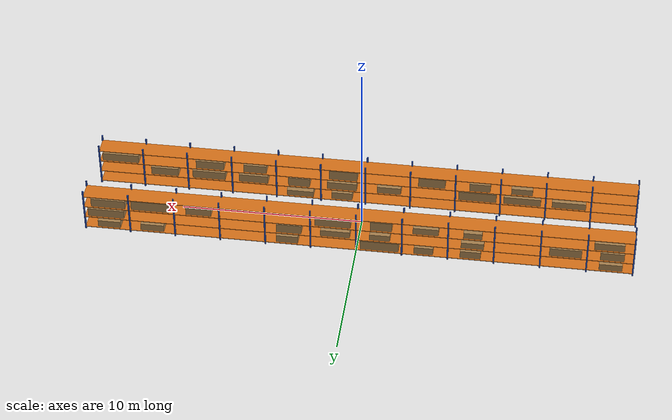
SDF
<sdf version="1.6">
 <world name="warehouse">
  <model name="shelf_row_1">
   <static>true</static>
   <link name="link">
    <visual name="up0_0_v">
     <pose>-15.0000 1.5400 1.3000 0 0 0.0000</pose>
     <geometry><box><size>0.0800 0.0800 2.6000</size></box></geometry>
     <material>
      <ambient>0.15 0.3 0.7 1</ambient>
      <diffuse>0.15 0.3 0.7 1</diffuse>
      <specular>0.1 0.1 0.1 1</specular>
     </material>
    </visual>
    <collision name="up0_0_c">
     <pose>-15.0000 1.5400 1.3000 0 0 0.0000</pose>
     <geometry><box><size>0.0800 0.0800 2.6000</size></box></geometry>
    </collision>
    <visual name="up0_2_v">
     <pose>-15.0000 2.4600 1.3000 0 0 0.0000</pose>
     <geometry><box><size>0.0800 0.0800 2.6000</size></box></geometry>
     <material>
      <ambient>0.15 0.3 0.7 1</ambient>
      <diffuse>0.15 0.3 0.7 1</diffuse>
      <specular>0.1 0.1 0.1 1</specular>
     </material>
    </visual>
    <collision name="up0_2_c">
     <pose>-15.0000 2.4600 1.3000 0 0 0.0000</pose>
     <geometry><box><size>0.0800 0.0800 2.6000</size></box></geometry>
    </collision>
    <visual name="up1_0_v">
     <pose>-12.5000 1.5400 1.3000 0 0 0.0000</pose>
     <geometry><box><size>0.0800 0.0800 2.6000</size></box></geometry>
     <material>
      <ambient>0.15 0.3 0.7 1</ambient>
      <diffuse>0.15 0.3 0.7 1</diffuse>
      <specular>0.1 0.1 0.1 1</specular>
     </material>
    </visual>
    <collision name="up1_0_c">
     <pose>-12.5000 1.5400 1.3000 0 0 0.0000</pose>
     <geometry><box><size>0.0800 0.0800 2.6000</size></box></geometry>
    </collision>
    <visual name="up1_2_v">
     <pose>-12.5000 2.4600 1.3000 0 0 0.0000</pose>
     <geometry><box><size>0.0800 0.0800 2.6000</size></box></geometry>
     <material>
      <ambient>0.15 0.3 0.7 1</ambient>
      <diffuse>0.15 0.3 0.7 1</diffuse>
      <specular>0.1 0.1 0.1 1</specular>
     </material>
    </visual>
    <collision name="up1_2_c">
     <pose>-12.5000 2.4600 1.3000 0 0 0.0000</pose>
     <geometry><box><size>0.0800 0.0800 2.6000</size></box></geometry>
    </collision>
    <visual name="up2_0_v">
     <pose>-10.0000 1.5400 1.3000 0 0 0.0000</pose>
     <geometry><box><size>0.0800 0.0800 2.6000</size></box></geometry>
     <material>
      <ambient>0.15 0.3 0.7 1</ambient>
      <diffuse>0.15 0.3 0.7 1</diffuse>
      <specular>0.1 0.1 0.1 1</specular>
     </material>
    </visual>
    <collision name="up2_0_c">
     <pose>-10.0000 1.5400 1.3000 0 0 0.0000</pose>
     <geometry><box><size>0.0800 0.0800 2.6000</size></box></geometry>
    </collision>
    <visual name="up2_2_v">
     <pose>-10.0000 2.4600 1.3000 0 0 0.0000</pose>
     <geometry><box><size>0.0800 0.0800 2.6000</size></box></geometry>
     <material>
      <ambient>0.15 0.3 0.7 1</ambient>
      <diffuse>0.15 0.3 0.7 1</diffuse>
      <specular>0.1 0.1 0.1 1</specular>
     </material>
    </visual>
    <collision name="up2_2_c">
     <pose>-10.0000 2.4600 1.3000 0 0 0.0000</pose>
     <geometry><box><size>0.0800 0.0800 2.6000</size></box></geometry>
    </collision>
    <visual name="up3_0_v">
     <pose>-7.5000 1.5400 1.3000 0 0 0.0000</pose>
     <geometry><box><size>0.0800 0.0800 2.6000</size></box></geometry>
     <material>
      <ambient>0.15 0.3 0.7 1</ambient>
      <diffuse>0.15 0.3 0.7 1</diffuse>
      <specular>0.1 0.1 0.1 1</specular>
     </material>
    </visual>
    <collision name="up3_0_c">
     <pose>-7.5000 1.5400 1.3000 0 0 0.0000</pose>
     <geometry><box><size>0.0800 0.0800 2.6000</size></box></geometry>
    </collision>
    <visual name="up3_2_v">
     <pose>-7.5000 2.4600 1.3000 0 0 0.0000</pose>
     <geometry><box><size>0.0800 0.0800 2.6000</size></box></geometry>
     <material>
      <ambient>0.15 0.3 0.7 1</ambient>
      <diffuse>0.15 0.3 0.7 1</diffuse>
      <specular>0.1 0.1 0.1 1</specular>
     </material>
    </visual>
    <collision name="up3_2_c">
     <pose>-7.5000 2.4600 1.3000 0 0 0.0000</pose>
     <geometry><box><size>0.0800 0.0800 2.6000</size></box></geometry>
    </collision>
    <visual name="up4_0_v">
     <pose>-5.0000 1.5400 1.3000 0 0 0.0000</pose>
     <geometry><box><size>0.0800 0.0800 2.6000</size></box></geometry>
     <material>
      <ambient>0.15 0.3 0.7 1</ambient>
      <diffuse>0.15 0.3 0.7 1</diffuse>
      <specular>0.1 0.1 0.1 1</specular>
     </material>
    </visual>
    <collision name="up4_0_c">
     <pose>-5.0000 1.5400 1.3000 0 0 0.0000</pose>
     <geometry><box><size>0.0800 0.0800 2.6000</size></box></geometry>
    </collision>
    <visual name="up4_2_v">
     <pose>-5.0000 2.4600 1.3000 0 0 0.0000</pose>
     <geometry><box><size>0.0800 0.0800 2.6000</size></box></geometry>
     <material>
      <ambient>0.15 0.3 0.7 1</ambient>
      <diffuse>0.15 0.3 0.7 1</diffuse>
      <specular>0.1 0.1 0.1 1</specular>
     </material>
    </visual>
    <collision name="up4_2_c">
     <pose>-5.0000 2.4600 1.3000 0 0 0.0000</pose>
     <geometry><box><size>0.0800 0.0800 2.6000</size></box></geometry>
    </collision>
    <visual name="up5_0_v">
     <pose>-2.5000 1.5400 1.3000 0 0 0.0000</pose>
     <geometry><box><size>0.0800 0.0800 2.6000</size></box></geometry>
     <material>
      <ambient>0.15 0.3 0.7 1</ambient>
      <diffuse>0.15 0.3 0.7 1</diffuse>
      <specular>0.1 0.1 0.1 1</specular>
     </material>
    </visual>
    <collision name="up5_0_c">
     <pose>-2.5000 1.5400 1.3000 0 0 0.0000</pose>
     <geometry><box><size>0.0800 0.0800 2.6000</size></box></geometry>
    </collision>
    <visual name="up5_2_v">
     <pose>-2.5000 2.4600 1.3000 0 0 0.0000</pose>
     <geometry><box><size>0.0800 0.0800 2.6000</size></box></geometry>
     <material>
      <ambient>0.15 0.3 0.7 1</ambient>
      <diffuse>0.15 0.3 0.7 1</diffuse>
      <specular>0.1 0.1 0.1 1</specular>
     </material>
    </visual>
    <collision name="up5_2_c">
     <pose>-2.5000 2.4600 1.3000 0 0 0.0000</pose>
     <geometry><box><size>0.0800 0.0800 2.6000</size></box></geometry>
    </collision>
    <visual name="up6_0_v">
     <pose>0.0000 1.5400 1.3000 0 0 0.0000</pose>
     <geometry><box><size>0.0800 0.0800 2.6000</size></box></geometry>
     <material>
      <ambient>0.15 0.3 0.7 1</ambient>
      <diffuse>0.15 0.3 0.7 1</diffuse>
      <specular>0.1 0.1 0.1 1</specular>
     </material>
    </visual>
    <collision name="up6_0_c">
     <pose>0.0000 1.5400 1.3000 0 0 0.0000</pose>
     <geometry><box><size>0.0800 0.0800 2.6000</size></box></geometry>
    </collision>
    <visual name="up6_2_v">
     <pose>0.0000 2.4600 1.3000 0 0 0.0000</pose>
     <geometry><box><size>0.0800 0.0800 2.6000</size></box></geometry>
     <material>
      <ambient>0.15 0.3 0.7 1</ambient>
      <diffuse>0.15 0.3 0.7 1</diffuse>
      <specular>0.1 0.1 0.1 1</specular>
     </material>
    </visual>
    <collision name="up6_2_c">
     <pose>0.0000 2.4600 1.3000 0 0 0.0000</pose>
     <geometry><box><size>0.0800 0.0800 2.6000</size></box></geometry>
    </collision>
    <visual name="up7_0_v">
     <pose>2.5000 1.5400 1.3000 0 0 0.0000</pose>
     <geometry><box><size>0.0800 0.0800 2.6000</size></box></geometry>
     <material>
      <ambient>0.15 0.3 0.7 1</ambient>
      <diffuse>0.15 0.3 0.7 1</diffuse>
      <specular>0.1 0.1 0.1 1</specular>
     </material>
    </visual>
    <collision name="up7_0_c">
     <pose>2.5000 1.5400 1.3000 0 0 0.0000</pose>
     <geometry><box><size>0.0800 0.0800 2.6000</size></box></geometry>
    </collision>
    <visual name="up7_2_v">
     <pose>2.5000 2.4600 1.3000 0 0 0.0000</pose>
     <geometry><box><size>0.0800 0.0800 2.6000</size></box></geometry>
     <material>
      <ambient>0.15 0.3 0.7 1</ambient>
      <diffuse>0.15 0.3 0.7 1</diffuse>
      <specular>0.1 0.1 0.1 1</specular>
     </material>
    </visual>
    <collision name="up7_2_c">
     <pose>2.5000 2.4600 1.3000 0 0 0.0000</pose>
     <geometry><box><size>0.0800 0.0800 2.6000</size></box></geometry>
    </collision>
    <visual name="up8_0_v">
     <pose>5.0000 1.5400 1.3000 0 0 0.0000</pose>
     <geometry><box><size>0.0800 0.0800 2.6000</size></box></geometry>
     <material>
      <ambient>0.15 0.3 0.7 1</ambient>
      <diffuse>0.15 0.3 0.7 1</diffuse>
      <specular>0.1 0.1 0.1 1</specular>
     </material>
    </visual>
    <collision name="up8_0_c">
     <pose>5.0000 1.5400 1.3000 0 0 0.0000</pose>
     <geometry><box><size>0.0800 0.0800 2.6000</size></box></geometry>
    </collision>
    <visual name="up8_2_v">
     <pose>5.0000 2.4600 1.3000 0 0 0.0000</pose>
     <geometry><box><size>0.0800 0.0800 2.6000</size></box></geometry>
     <material>
      <ambient>0.15 0.3 0.7 1</ambient>
      <diffuse>0.15 0.3 0.7 1</diffuse>
      <specular>0.1 0.1 0.1 1</specular>
     </material>
    </visual>
    <collision name="up8_2_c">
     <pose>5.0000 2.4600 1.3000 0 0 0.0000</pose>
     <geometry><box><size>0.0800 0.0800 2.6000</size></box></geometry>
    </collision>
    <visual name="up9_0_v">
     <pose>7.5000 1.5400 1.3000 0 0 0.0000</pose>
     <geometry><box><size>0.0800 0.0800 2.6000</size></box></geometry>
     <material>
      <ambient>0.15 0.3 0.7 1</ambient>
      <diffuse>0.15 0.3 0.7 1</diffuse>
      <specular>0.1 0.1 0.1 1</specular>
     </material>
    </visual>
    <collision name="up9_0_c">
     <pose>7.5000 1.5400 1.3000 0 0 0.0000</pose>
     <geometry><box><size>0.0800 0.0800 2.6000</size></box></geometry>
    </collision>
    <visual name="up9_2_v">
     <pose>7.5000 2.4600 1.3000 0 0 0.0000</pose>
     <geometry><box><size>0.0800 0.0800 2.6000</size></box></geometry>
     <material>
      <ambient>0.15 0.3 0.7 1</ambient>
      <diffuse>0.15 0.3 0.7 1</diffuse>
      <specular>0.1 0.1 0.1 1</specular>
     </material>
    </visual>
    <collision name="up9_2_c">
     <pose>7.5000 2.4600 1.3000 0 0 0.0000</pose>
     <geometry><box><size>0.0800 0.0800 2.6000</size></box></geometry>
    </collision>
    <visual name="up10_0_v">
     <pose>10.0000 1.5400 1.3000 0 0 0.0000</pose>
     <geometry><box><size>0.0800 0.0800 2.6000</size></box></geometry>
     <material>
      <ambient>0.15 0.3 0.7 1</ambient>
      <diffuse>0.15 0.3 0.7 1</diffuse>
      <specular>0.1 0.1 0.1 1</specular>
     </material>
    </visual>
    <collision name="up10_0_c">
     <pose>10.0000 1.5400 1.3000 0 0 0.0000</pose>
     <geometry><box><size>0.0800 0.0800 2.6000</size></box></geometry>
    </collision>
    <visual name="up10_2_v">
     <pose>10.0000 2.4600 1.3000 0 0 0.0000</pose>
     <geometry><box><size>0.0800 0.0800 2.6000</size></box></geometry>
     <material>
      <ambient>0.15 0.3 0.7 1</ambient>
      <diffuse>0.15 0.3 0.7 1</diffuse>
      <specular>0.1 0.1 0.1 1</specular>
     </material>
    </visual>
    <collision name="up10_2_c">
     <pose>10.0000 2.4600 1.3000 0 0 0.0000</pose>
     <geometry><box><size>0.0800 0.0800 2.6000</size></box></geometry>
    </collision>
    <visual name="up11_0_v">
     <pose>12.5000 1.5400 1.3000 0 0 0.0000</pose>
     <geometry><box><size>0.0800 0.0800 2.6000</size></box></geometry>
     <material>
      <ambient>0.15 0.3 0.7 1</ambient>
      <diffuse>0.15 0.3 0.7 1</diffuse>
      <specular>0.1 0.1 0.1 1</specular>
     </material>
    </visual>
    <collision name="up11_0_c">
     <pose>12.5000 1.5400 1.3000 0 0 0.0000</pose>
     <geometry><box><size>0.0800 0.0800 2.6000</size></box></geometry>
    </collision>
    <visual name="up11_2_v">
     <pose>12.5000 2.4600 1.3000 0 0 0.0000</pose>
     <geometry><box><size>0.0800 0.0800 2.6000</size></box></geometry>
     <material>
      <ambient>0.15 0.3 0.7 1</ambient>
      <diffuse>0.15 0.3 0.7 1</diffuse>
      <specular>0.1 0.1 0.1 1</specular>
     </material>
    </visual>
    <collision name="up11_2_c">
     <pose>12.5000 2.4600 1.3000 0 0 0.0000</pose>
     <geometry><box><size>0.0800 0.0800 2.6000</size></box></geometry>
    </collision>
    <visual name="up12_0_v">
     <pose>15.0000 1.5400 1.3000 0 0 0.0000</pose>
     <geometry><box><size>0.0800 0.0800 2.6000</size></box></geometry>
     <material>
      <ambient>0.15 0.3 0.7 1</ambient>
      <diffuse>0.15 0.3 0.7 1</diffuse>
      <specular>0.1 0.1 0.1 1</specular>
     </material>
    </visual>
    <collision name="up12_0_c">
     <pose>15.0000 1.5400 1.3000 0 0 0.0000</pose>
     <geometry><box><size>0.0800 0.0800 2.6000</size></box></geometry>
    </collision>
    <visual name="up12_2_v">
     <pose>15.0000 2.4600 1.3000 0 0 0.0000</pose>
     <geometry><box><size>0.0800 0.0800 2.6000</size></box></geometry>
     <material>
      <ambient>0.15 0.3 0.7 1</ambient>
      <diffuse>0.15 0.3 0.7 1</diffuse>
      <specular>0.1 0.1 0.1 1</specular>
     </material>
    </visual>
    <collision name="up12_2_c">
     <pose>15.0000 2.4600 1.3000 0 0 0.0000</pose>
     <geometry><box><size>0.0800 0.0800 2.6000</size></box></geometry>
    </collision>
    <visual name="beam0_v">
     <pose>0.0000 2.0000 0.1500 0 0 0.0000</pose>
     <geometry><box><size>30.0000 1.0000 0.0400</size></box></geometry>
     <material>
      <ambient>0.85 0.45 0.1 1</ambient>
      <diffuse>0.85 0.45 0.1 1</diffuse>
      <specular>0.1 0.1 0.1 1</specular>
     </material>
    </visual>
    <collision name="beam0_c">
     <pose>0.0000 2.0000 0.1500 0 0 0.0000</pose>
     <geometry><box><size>30.0000 1.0000 0.0400</size></box></geometry>
    </collision>
    <visual name="beam1_v">
     <pose>0.0000 2.0000 0.8500 0 0 0.0000</pose>
     <geometry><box><size>30.0000 1.0000 0.0400</size></box></geometry>
     <material>
      <ambient>0.85 0.45 0.1 1</ambient>
      <diffuse>0.85 0.45 0.1 1</diffuse>
      <specular>0.1 0.1 0.1 1</specular>
     </material>
    </visual>
    <collision name="beam1_c">
     <pose>0.0000 2.0000 0.8500 0 0 0.0000</pose>
     <geometry><box><size>30.0000 1.0000 0.0400</size></box></geometry>
    </collision>
    <visual name="beam2_v">
     <pose>0.0000 2.0000 1.5500 0 0 0.0000</pose>
     <geometry><box><size>30.0000 1.0000 0.0400</size></box></geometry>
     <material>
      <ambient>0.85 0.45 0.1 1</ambient>
      <diffuse>0.85 0.45 0.1 1</diffuse>
      <specular>0.1 0.1 0.1 1</specular>
     </material>
    </visual>
    <collision name="beam2_c">
     <pose>0.0000 2.0000 1.5500 0 0 0.0000</pose>
     <geometry><box><size>30.0000 1.0000 0.0400</size></box></geometry>
    </collision>
    <visual name="beam3_v">
     <pose>0.0000 2.0000 2.2500 0 0 0.0000</pose>
     <geometry><box><size>30.0000 1.0000 0.0400</size></box></geometry>
     <material>
      <ambient>0.85 0.45 0.1 1</ambient>
      <diffuse>0.85 0.45 0.1 1</diffuse>
      <specular>0.1 0.1 0.1 1</specular>
     </material>
    </visual>
    <collision name="beam3_c">
     <pose>0.0000 2.0000 2.2500 0 0 0.0000</pose>
     <geometry><box><size>30.0000 1.0000 0.0400</size></box></geometry>
    </collision>
    <visual name="pal0_0_v">
     <pose>-13.8033 2.0000 0.3670 0 0 0.0000</pose>
     <geometry><box><size>1.2552 0.8500 0.3941</size></box></geometry>
     <material>
      <ambient>0.65 0.5 0.3 1</ambient>
      <diffuse>0.65 0.5 0.3 1</diffuse>
      <specular>0.1 0.1 0.1 1</specular>
     </material>
    </visual>
    <collision name="pal0_0_c">
     <pose>-13.8033 2.0000 0.3670 0 0 0.0000</pose>
     <geometry><box><size>1.2552 0.8500 0.3941</size></box></geometry>
    </collision>
    <visual name="pal0_1_v">
     <pose>-13.8492 2.0000 1.1186 0 0 0.0000</pose>
     <geometry><box><size>1.2890 0.8500 0.4973</size></box></geometry>
     <material>
      <ambient>0.65 0.5 0.3 1</ambient>
      <diffuse>0.65 0.5 0.3 1</diffuse>
      <specular>0.1 0.1 0.1 1</specular>
     </material>
    </visual>
    <collision name="pal0_1_c">
     <pose>-13.8492 2.0000 1.1186 0 0 0.0000</pose>
     <geometry><box><size>1.2890 0.8500 0.4973</size></box></geometry>
    </collision>
    <visual name="pal0_2_v">
     <pose>-13.6594 2.0000 1.7912 0 0 0.0000</pose>
     <geometry><box><size>1.6230 0.8500 0.4423</size></box></geometry>
     <material>
      <ambient>0.65 0.5 0.3 1</ambient>
      <diffuse>0.65 0.5 0.3 1</diffuse>
      <specular>0.1 0.1 0.1 1</specular>
     </material>
    </visual>
    <collision name="pal0_2_c">
     <pose>-13.6594 2.0000 1.7912 0 0 0.0000</pose>
     <geometry><box><size>1.6230 0.8500 0.4423</size></box></geometry>
    </collision>
    <visual name="pal1_1_v">
     <pose>-11.3392 2.0000 1.1222 0 0 0.0000</pose>
     <geometry><box><size>1.7438 0.8500 0.5044</size></box></geometry>
     <material>
      <ambient>0.65 0.5 0.3 1</ambient>
      <diffuse>0.65 0.5 0.3 1</diffuse>
      <specular>0.1 0.1 0.1 1</specular>
     </material>
    </visual>
    <collision name="pal1_1_c">
     <pose>-11.3392 2.0000 1.1222 0 0 0.0000</pose>
     <geometry><box><size>1.7438 0.8500 0.5044</size></box></geometry>
    </collision>
    <visual name="pal3_0_v">
     <pose>-6.2231 2.0000 0.3949 0 0 0.0000</pose>
     <geometry><box><size>1.1139 0.8500 0.4497</size></box></geometry>
     <material>
      <ambient>0.65 0.5 0.3 1</ambient>
      <diffuse>0.65 0.5 0.3 1</diffuse>
      <specular>0.1 0.1 0.1 1</specular>
     </material>
    </visual>
    <collision name="pal3_0_c">
     <pose>-6.2231 2.0000 0.3949 0 0 0.0000</pose>
     <geometry><box><size>1.1139 0.8500 0.4497</size></box></geometry>
    </collision>
    <visual name="pal3_1_v">
     <pose>-6.3175 2.0000 1.0534 0 0 0.0000</pose>
     <geometry><box><size>1.2296 0.8500 0.3668</size></box></geometry>
     <material>
      <ambient>0.65 0.5 0.3 1</ambient>
      <diffuse>0.65 0.5 0.3 1</diffuse>
      <specular>0.1 0.1 0.1 1</specular>
     </material>
    </visual>
    <collision name="pal3_1_c">
     <pose>-6.3175 2.0000 1.0534 0 0 0.0000</pose>
     <geometry><box><size>1.2296 0.8500 0.3668</size></box></geometry>
    </collision>
    <visual name="pal3_2_v">
     <pose>-6.3197 2.0000 1.7516 0 0 0.0000</pose>
     <geometry><box><size>1.0003 0.8500 0.3631</size></box></geometry>
     <material>
      <ambient>0.65 0.5 0.3 1</ambient>
      <diffuse>0.65 0.5 0.3 1</diffuse>
      <specular>0.1 0.1 0.1 1</specular>
     </material>
    </visual>
    <collision name="pal3_2_c">
     <pose>-6.3197 2.0000 1.7516 0 0 0.0000</pose>
     <geometry><box><size>1.0003 0.8500 0.3631</size></box></geometry>
    </collision>
    <visual name="pal4_0_v">
     <pose>-3.6751 2.0000 0.3905 0 0 0.0000</pose>
     <geometry><box><size>1.0281 0.8500 0.4409</size></box></geometry>
     <material>
      <ambient>0.65 0.5 0.3 1</ambient>
      <diffuse>0.65 0.5 0.3 1</diffuse>
      <specular>0.1 0.1 0.1 1</specular>
     </material>
    </visual>
    <collision name="pal4_0_c">
     <pose>-3.6751 2.0000 0.3905 0 0 0.0000</pose>
     <geometry><box><size>1.0281 0.8500 0.4409</size></box></geometry>
    </collision>
    <visual name="pal4_2_v">
     <pose>-3.7772 2.0000 1.7765 0 0 0.0000</pose>
     <geometry><box><size>1.3821 0.8500 0.4131</size></box></geometry>
     <material>
      <ambient>0.65 0.5 0.3 1</ambient>
      <diffuse>0.65 0.5 0.3 1</diffuse>
      <specular>0.1 0.1 0.1 1</specular>
     </material>
    </visual>
    <collision name="pal4_2_c">
     <pose>-3.7772 2.0000 1.7765 0 0 0.0000</pose>
     <geometry><box><size>1.3821 0.8500 0.4131</size></box></geometry>
    </collision>
    <visual name="pal5_0_v">
     <pose>-1.2568 2.0000 0.4511 0 0 0.0000</pose>
     <geometry><box><size>2.0924 0.8500 0.5622</size></box></geometry>
     <material>
      <ambient>0.65 0.5 0.3 1</ambient>
      <diffuse>0.65 0.5 0.3 1</diffuse>
      <specular>0.1 0.1 0.1 1</specular>
     </material>
    </visual>
    <collision name="pal5_0_c">
     <pose>-1.2568 2.0000 0.4511 0 0 0.0000</pose>
     <geometry><box><size>2.0924 0.8500 0.5622</size></box></geometry>
    </collision>
    <visual name="pal5_1_v">
     <pose>-1.2815 2.0000 1.0557 0 0 0.0000</pose>
     <geometry><box><size>1.1124 0.8500 0.3715</size></box></geometry>
     <material>
      <ambient>0.65 0.5 0.3 1</ambient>
      <diffuse>0.65 0.5 0.3 1</diffuse>
      <specular>0.1 0.1 0.1 1</specular>
     </material>
    </visual>
    <collision name="pal5_1_c">
     <pose>-1.2815 2.0000 1.0557 0 0 0.0000</pose>
     <geometry><box><size>1.1124 0.8500 0.3715</size></box></geometry>
    </collision>
    <visual name="pal5_2_v">
     <pose>-1.3454 2.0000 1.8486 0 0 0.0000</pose>
     <geometry><box><size>1.1776 0.8500 0.5572</size></box></geometry>
     <material>
      <ambient>0.65 0.5 0.3 1</ambient>
      <diffuse>0.65 0.5 0.3 1</diffuse>
      <specular>0.1 0.1 0.1 1</specular>
     </material>
    </visual>
    <collision name="pal5_2_c">
     <pose>-1.3454 2.0000 1.8486 0 0 0.0000</pose>
     <geometry><box><size>1.1776 0.8500 0.5572</size></box></geometry>
    </collision>
    <visual name="pal6_1_v">
     <pose>1.1554 2.0000 1.0633 0 0 0.0000</pose>
     <geometry><box><size>1.5975 0.8500 0.3867</size></box></geometry>
     <material>
      <ambient>0.65 0.5 0.3 1</ambient>
      <diffuse>0.65 0.5 0.3 1</diffuse>
      <specular>0.1 0.1 0.1 1</specular>
     </material>
    </visual>
    <collision name="pal6_1_c">
     <pose>1.1554 2.0000 1.0633 0 0 0.0000</pose>
     <geometry><box><size>1.5975 0.8500 0.3867</size></box></geometry>
    </collision>
    <visual name="pal6_2_v">
     <pose>1.2892 2.0000 1.8673 0 0 0.0000</pose>
     <geometry><box><size>1.9497 0.8500 0.5946</size></box></geometry>
     <material>
      <ambient>0.65 0.5 0.3 1</ambient>
      <diffuse>0.65 0.5 0.3 1</diffuse>
      <specular>0.1 0.1 0.1 1</specular>
     </material>
    </visual>
    <collision name="pal6_2_c">
     <pose>1.2892 2.0000 1.8673 0 0 0.0000</pose>
     <geometry><box><size>1.9497 0.8500 0.5946</size></box></geometry>
    </collision>
    <visual name="pal7_0_v">
     <pose>3.8044 2.0000 0.3908 0 0 0.0000</pose>
     <geometry><box><size>1.1837 0.8500 0.4417</size></box></geometry>
     <material>
      <ambient>0.65 0.5 0.3 1</ambient>
      <diffuse>0.65 0.5 0.3 1</diffuse>
      <specular>0.1 0.1 0.1 1</specular>
     </material>
    </visual>
    <collision name="pal7_0_c">
     <pose>3.8044 2.0000 0.3908 0 0 0.0000</pose>
     <geometry><box><size>1.1837 0.8500 0.4417</size></box></geometry>
    </collision>
    <visual name="pal7_1_v">
     <pose>3.6946 2.0000 1.1424 0 0 0.0000</pose>
     <geometry><box><size>1.3626 0.8500 0.5448</size></box></geometry>
     <material>
      <ambient>0.65 0.5 0.3 1</ambient>
      <diffuse>0.65 0.5 0.3 1</diffuse>
      <specular>0.1 0.1 0.1 1</specular>
     </material>
    </visual>
    <collision name="pal7_1_c">
     <pose>3.6946 2.0000 1.1424 0 0 0.0000</pose>
     <geometry><box><size>1.3626 0.8500 0.5448</size></box></geometry>
    </collision>
    <visual name="pal9_2_v">
     <pose>8.6558 2.0000 1.8097 0 0 0.0000</pose>
     <geometry><box><size>1.3911 0.8500 0.4794</size></box></geometry>
     <material>
      <ambient>0.65 0.5 0.3 1</ambient>
      <diffuse>0.65 0.5 0.3 1</diffuse>
      <specular>0.1 0.1 0.1 1</specular>
     </material>
    </visual>
    <collision name="pal9_2_c">
     <pose>8.6558 2.0000 1.8097 0 0 0.0000</pose>
     <geometry><box><size>1.3911 0.8500 0.4794</size></box></geometry>
    </collision>
    <visual name="pal10_0_v">
     <pose>11.2885 2.0000 0.3799 0 0 0.0000</pose>
     <geometry><box><size>1.2851 0.8500 0.4199</size></box></geometry>
     <material>
      <ambient>0.65 0.5 0.3 1</ambient>
      <diffuse>0.65 0.5 0.3 1</diffuse>
      <specular>0.1 0.1 0.1 1</specular>
     </material>
    </visual>
    <collision name="pal10_0_c">
     <pose>11.2885 2.0000 0.3799 0 0 0.0000</pose>
     <geometry><box><size>1.2851 0.8500 0.4199</size></box></geometry>
    </collision>
    <visual name="pal10_2_v">
     <pose>11.3410 2.0000 1.8621 0 0 0.0000</pose>
     <geometry><box><size>2.0868 0.8500 0.5843</size></box></geometry>
     <material>
      <ambient>0.65 0.5 0.3 1</ambient>
      <diffuse>0.65 0.5 0.3 1</diffuse>
      <specular>0.1 0.1 0.1 1</specular>
     </material>
    </visual>
    <collision name="pal10_2_c">
     <pose>11.3410 2.0000 1.8621 0 0 0.0000</pose>
     <geometry><box><size>2.0868 0.8500 0.5843</size></box></geometry>
    </collision>
    <visual name="pal11_0_v">
     <pose>13.6893 2.0000 0.3726 0 0 0.0000</pose>
     <geometry><box><size>1.2495 0.8500 0.4051</size></box></geometry>
     <material>
      <ambient>0.65 0.5 0.3 1</ambient>
      <diffuse>0.65 0.5 0.3 1</diffuse>
      <specular>0.1 0.1 0.1 1</specular>
     </material>
    </visual>
    <collision name="pal11_0_c">
     <pose>13.6893 2.0000 0.3726 0 0 0.0000</pose>
     <geometry><box><size>1.2495 0.8500 0.4051</size></box></geometry>
    </collision>
    <visual name="pal11_1_v">
     <pose>13.8181 2.0000 1.1230 0 0 0.0000</pose>
     <geometry><box><size>1.9903 0.8500 0.5060</size></box></geometry>
     <material>
      <ambient>0.65 0.5 0.3 1</ambient>
      <diffuse>0.65 0.5 0.3 1</diffuse>
      <specular>0.1 0.1 0.1 1</specular>
     </material>
    </visual>
    <collision name="pal11_1_c">
     <pose>13.8181 2.0000 1.1230 0 0 0.0000</pose>
     <geometry><box><size>1.9903 0.8500 0.5060</size></box></geometry>
    </collision>
    <visual name="pal11_2_v">
     <pose>13.6670 2.0000 1.8266 0 0 0.0000</pose>
     <geometry><box><size>1.8796 0.8500 0.5132</size></box></geometry>
     <material>
      <ambient>0.65 0.5 0.3 1</ambient>
      <diffuse>0.65 0.5 0.3 1</diffuse>
      <specular>0.1 0.1 0.1 1</specular>
     </material>
    </visual>
    <collision name="pal11_2_c">
     <pose>13.6670 2.0000 1.8266 0 0 0.0000</pose>
     <geometry><box><size>1.8796 0.8500 0.5132</size></box></geometry>
    </collision>
   </link>
  </model>
  <model name="shelf_row_2">
   <static>true</static>
   <link name="link">
    <visual name="up0_0_v">
     <pose>-15.0000 -2.4600 1.3000 0 0 0.0000</pose>
     <geometry><box><size>0.0800 0.0800 2.6000</size></box></geometry>
     <material>
      <ambient>0.15 0.3 0.7 1</ambient>
      <diffuse>0.15 0.3 0.7 1</diffuse>
      <specular>0.1 0.1 0.1 1</specular>
     </material>
    </visual>
    <collision name="up0_0_c">
     <pose>-15.0000 -2.4600 1.3000 0 0 0.0000</pose>
     <geometry><box><size>0.0800 0.0800 2.6000</size></box></geometry>
    </collision>
    <visual name="up0_2_v">
     <pose>-15.0000 -1.5400 1.3000 0 0 0.0000</pose>
     <geometry><box><size>0.0800 0.0800 2.6000</size></box></geometry>
     <material>
      <ambient>0.15 0.3 0.7 1</ambient>
      <diffuse>0.15 0.3 0.7 1</diffuse>
      <specular>0.1 0.1 0.1 1</specular>
     </material>
    </visual>
    <collision name="up0_2_c">
     <pose>-15.0000 -1.5400 1.3000 0 0 0.0000</pose>
     <geometry><box><size>0.0800 0.0800 2.6000</size></box></geometry>
    </collision>
    <visual name="up1_0_v">
     <pose>-12.5000 -2.4600 1.3000 0 0 0.0000</pose>
     <geometry><box><size>0.0800 0.0800 2.6000</size></box></geometry>
     <material>
      <ambient>0.15 0.3 0.7 1</ambient>
      <diffuse>0.15 0.3 0.7 1</diffuse>
      <specular>0.1 0.1 0.1 1</specular>
     </material>
    </visual>
    <collision name="up1_0_c">
     <pose>-12.5000 -2.4600 1.3000 0 0 0.0000</pose>
     <geometry><box><size>0.0800 0.0800 2.6000</size></box></geometry>
    </collision>
    <visual name="up1_2_v">
     <pose>-12.5000 -1.5400 1.3000 0 0 0.0000</pose>
     <geometry><box><size>0.0800 0.0800 2.6000</size></box></geometry>
     <material>
      <ambient>0.15 0.3 0.7 1</ambient>
      <diffuse>0.15 0.3 0.7 1</diffuse>
      <specular>0.1 0.1 0.1 1</specular>
     </material>
    </visual>
    <collision name="up1_2_c">
     <pose>-12.5000 -1.5400 1.3000 0 0 0.0000</pose>
     <geometry><box><size>0.0800 0.0800 2.6000</size></box></geometry>
    </collision>
    <visual name="up2_0_v">
     <pose>-10.0000 -2.4600 1.3000 0 0 0.0000</pose>
     <geometry><box><size>0.0800 0.0800 2.6000</size></box></geometry>
     <material>
      <ambient>0.15 0.3 0.7 1</ambient>
      <diffuse>0.15 0.3 0.7 1</diffuse>
      <specular>0.1 0.1 0.1 1</specular>
     </material>
    </visual>
    <collision name="up2_0_c">
     <pose>-10.0000 -2.4600 1.3000 0 0 0.0000</pose>
     <geometry><box><size>0.0800 0.0800 2.6000</size></box></geometry>
    </collision>
    <visual name="up2_2_v">
     <pose>-10.0000 -1.5400 1.3000 0 0 0.0000</pose>
     <geometry><box><size>0.0800 0.0800 2.6000</size></box></geometry>
     <material>
      <ambient>0.15 0.3 0.7 1</ambient>
      <diffuse>0.15 0.3 0.7 1</diffuse>
      <specular>0.1 0.1 0.1 1</specular>
     </material>
    </visual>
    <collision name="up2_2_c">
     <pose>-10.0000 -1.5400 1.3000 0 0 0.0000</pose>
     <geometry><box><size>0.0800 0.0800 2.6000</size></box></geometry>
    </collision>
    <visual name="up3_0_v">
     <pose>-7.5000 -2.4600 1.3000 0 0 0.0000</pose>
     <geometry><box><size>0.0800 0.0800 2.6000</size></box></geometry>
     <material>
      <ambient>0.15 0.3 0.7 1</ambient>
      <diffuse>0.15 0.3 0.7 1</diffuse>
      <specular>0.1 0.1 0.1 1</specular>
     </material>
    </visual>
    <collision name="up3_0_c">
     <pose>-7.5000 -2.4600 1.3000 0 0 0.0000</pose>
     <geometry><box><size>0.0800 0.0800 2.6000</size></box></geometry>
    </collision>
    <visual name="up3_2_v">
     <pose>-7.5000 -1.5400 1.3000 0 0 0.0000</pose>
     <geometry><box><size>0.0800 0.0800 2.6000</size></box></geometry>
     <material>
      <ambient>0.15 0.3 0.7 1</ambient>
      <diffuse>0.15 0.3 0.7 1</diffuse>
      <specular>0.1 0.1 0.1 1</specular>
     </material>
    </visual>
    <collision name="up3_2_c">
     <pose>-7.5000 -1.5400 1.3000 0 0 0.0000</pose>
     <geometry><box><size>0.0800 0.0800 2.6000</size></box></geometry>
    </collision>
    <visual name="up4_0_v">
     <pose>-5.0000 -2.4600 1.3000 0 0 0.0000</pose>
     <geometry><box><size>0.0800 0.0800 2.6000</size></box></geometry>
     <material>
      <ambient>0.15 0.3 0.7 1</ambient>
      <diffuse>0.15 0.3 0.7 1</diffuse>
      <specular>0.1 0.1 0.1 1</specular>
     </material>
    </visual>
    <collision name="up4_0_c">
     <pose>-5.0000 -2.4600 1.3000 0 0 0.0000</pose>
     <geometry><box><size>0.0800 0.0800 2.6000</size></box></geometry>
    </collision>
    <visual name="up4_2_v">
     <pose>-5.0000 -1.5400 1.3000 0 0 0.0000</pose>
     <geometry><box><size>0.0800 0.0800 2.6000</size></box></geometry>
     <material>
      <ambient>0.15 0.3 0.7 1</ambient>
      <diffuse>0.15 0.3 0.7 1</diffuse>
      <specular>0.1 0.1 0.1 1</specular>
     </material>
    </visual>
    <collision name="up4_2_c">
     <pose>-5.0000 -1.5400 1.3000 0 0 0.0000</pose>
     <geometry><box><size>0.0800 0.0800 2.6000</size></box></geometry>
    </collision>
    <visual name="up5_0_v">
     <pose>-2.5000 -2.4600 1.3000 0 0 0.0000</pose>
     <geometry><box><size>0.0800 0.0800 2.6000</size></box></geometry>
     <material>
      <ambient>0.15 0.3 0.7 1</ambient>
      <diffuse>0.15 0.3 0.7 1</diffuse>
      <specular>0.1 0.1 0.1 1</specular>
     </material>
    </visual>
    <collision name="up5_0_c">
     <pose>-2.5000 -2.4600 1.3000 0 0 0.0000</pose>
     <geometry><box><size>0.0800 0.0800 2.6000</size></box></geometry>
    </collision>
    <visual name="up5_2_v">
     <pose>-2.5000 -1.5400 1.3000 0 0 0.0000</pose>
     <geometry><box><size>0.0800 0.0800 2.6000</size></box></geometry>
     <material>
      <ambient>0.15 0.3 0.7 1</ambient>
      <diffuse>0.15 0.3 0.7 1</diffuse>
      <specular>0.1 0.1 0.1 1</specular>
     </material>
    </visual>
    <collision name="up5_2_c">
     <pose>-2.5000 -1.5400 1.3000 0 0 0.0000</pose>
     <geometry><box><size>0.0800 0.0800 2.6000</size></box></geometry>
    </collision>
    <visual name="up6_0_v">
     <pose>0.0000 -2.4600 1.3000 0 0 0.0000</pose>
     <geometry><box><size>0.0800 0.0800 2.6000</size></box></geometry>
     <material>
      <ambient>0.15 0.3 0.7 1</ambient>
      <diffuse>0.15 0.3 0.7 1</diffuse>
      <specular>0.1 0.1 0.1 1</specular>
     </material>
    </visual>
    <collision name="up6_0_c">
     <pose>0.0000 -2.4600 1.3000 0 0 0.0000</pose>
     <geometry><box><size>0.0800 0.0800 2.6000</size></box></geometry>
    </collision>
    <visual name="up6_2_v">
     <pose>0.0000 -1.5400 1.3000 0 0 0.0000</pose>
     <geometry><box><size>0.0800 0.0800 2.6000</size></box></geometry>
     <material>
      <ambient>0.15 0.3 0.7 1</ambient>
      <diffuse>0.15 0.3 0.7 1</diffuse>
      <specular>0.1 0.1 0.1 1</specular>
     </material>
    </visual>
    <collision name="up6_2_c">
     <pose>0.0000 -1.5400 1.3000 0 0 0.0000</pose>
     <geometry><box><size>0.0800 0.0800 2.6000</size></box></geometry>
    </collision>
    <visual name="up7_0_v">
     <pose>2.5000 -2.4600 1.3000 0 0 0.0000</pose>
     <geometry><box><size>0.0800 0.0800 2.6000</size></box></geometry>
     <material>
      <ambient>0.15 0.3 0.7 1</ambient>
      <diffuse>0.15 0.3 0.7 1</diffuse>
      <specular>0.1 0.1 0.1 1</specular>
     </material>
    </visual>
    <collision name="up7_0_c">
     <pose>2.5000 -2.4600 1.3000 0 0 0.0000</pose>
     <geometry><box><size>0.0800 0.0800 2.6000</size></box></geometry>
    </collision>
    <visual name="up7_2_v">
     <pose>2.5000 -1.5400 1.3000 0 0 0.0000</pose>
     <geometry><box><size>0.0800 0.0800 2.6000</size></box></geometry>
     <material>
      <ambient>0.15 0.3 0.7 1</ambient>
      <diffuse>0.15 0.3 0.7 1</diffuse>
      <specular>0.1 0.1 0.1 1</specular>
     </material>
    </visual>
    <collision name="up7_2_c">
     <pose>2.5000 -1.5400 1.3000 0 0 0.0000</pose>
     <geometry><box><size>0.0800 0.0800 2.6000</size></box></geometry>
    </collision>
    <visual name="up8_0_v">
     <pose>5.0000 -2.4600 1.3000 0 0 0.0000</pose>
     <geometry><box><size>0.0800 0.0800 2.6000</size></box></geometry>
     <material>
      <ambient>0.15 0.3 0.7 1</ambient>
      <diffuse>0.15 0.3 0.7 1</diffuse>
      <specular>0.1 0.1 0.1 1</specular>
     </material>
    </visual>
    <collision name="up8_0_c">
     <pose>5.0000 -2.4600 1.3000 0 0 0.0000</pose>
     <geometry><box><size>0.0800 0.0800 2.6000</size></box></geometry>
    </collision>
    <visual name="up8_2_v">
     <pose>5.0000 -1.5400 1.3000 0 0 0.0000</pose>
     <geometry><box><size>0.0800 0.0800 2.6000</size></box></geometry>
     <material>
      <ambient>0.15 0.3 0.7 1</ambient>
      <diffuse>0.15 0.3 0.7 1</diffuse>
      <specular>0.1 0.1 0.1 1</specular>
     </material>
    </visual>
    <collision name="up8_2_c">
     <pose>5.0000 -1.5400 1.3000 0 0 0.0000</pose>
     <geometry><box><size>0.0800 0.0800 2.6000</size></box></geometry>
    </collision>
    <visual name="up9_0_v">
     <pose>7.5000 -2.4600 1.3000 0 0 0.0000</pose>
     <geometry><box><size>0.0800 0.0800 2.6000</size></box></geometry>
     <material>
      <ambient>0.15 0.3 0.7 1</ambient>
      <diffuse>0.15 0.3 0.7 1</diffuse>
      <specular>0.1 0.1 0.1 1</specular>
     </material>
    </visual>
    <collision name="up9_0_c">
     <pose>7.5000 -2.4600 1.3000 0 0 0.0000</pose>
     <geometry><box><size>0.0800 0.0800 2.6000</size></box></geometry>
    </collision>
    <visual name="up9_2_v">
     <pose>7.5000 -1.5400 1.3000 0 0 0.0000</pose>
     <geometry><box><size>0.0800 0.0800 2.6000</size></box></geometry>
     <material>
      <ambient>0.15 0.3 0.7 1</ambient>
      <diffuse>0.15 0.3 0.7 1</diffuse>
      <specular>0.1 0.1 0.1 1</specular>
     </material>
    </visual>
    <collision name="up9_2_c">
     <pose>7.5000 -1.5400 1.3000 0 0 0.0000</pose>
     <geometry><box><size>0.0800 0.0800 2.6000</size></box></geometry>
    </collision>
    <visual name="up10_0_v">
     <pose>10.0000 -2.4600 1.3000 0 0 0.0000</pose>
     <geometry><box><size>0.0800 0.0800 2.6000</size></box></geometry>
     <material>
      <ambient>0.15 0.3 0.7 1</ambient>
      <diffuse>0.15 0.3 0.7 1</diffuse>
      <specular>0.1 0.1 0.1 1</specular>
     </material>
    </visual>
    <collision name="up10_0_c">
     <pose>10.0000 -2.4600 1.3000 0 0 0.0000</pose>
     <geometry><box><size>0.0800 0.0800 2.6000</size></box></geometry>
    </collision>
    <visual name="up10_2_v">
     <pose>10.0000 -1.5400 1.3000 0 0 0.0000</pose>
     <geometry><box><size>0.0800 0.0800 2.6000</size></box></geometry>
     <material>
      <ambient>0.15 0.3 0.7 1</ambient>
      <diffuse>0.15 0.3 0.7 1</diffuse>
      <specular>0.1 0.1 0.1 1</specular>
     </material>
    </visual>
    <collision name="up10_2_c">
     <pose>10.0000 -1.5400 1.3000 0 0 0.0000</pose>
     <geometry><box><size>0.0800 0.0800 2.6000</size></box></geometry>
    </collision>
    <visual name="up11_0_v">
     <pose>12.5000 -2.4600 1.3000 0 0 0.0000</pose>
     <geometry><box><size>0.0800 0.0800 2.6000</size></box></geometry>
     <material>
      <ambient>0.15 0.3 0.7 1</ambient>
      <diffuse>0.15 0.3 0.7 1</diffuse>
      <specular>0.1 0.1 0.1 1</specular>
     </material>
    </visual>
    <collision name="up11_0_c">
     <pose>12.5000 -2.4600 1.3000 0 0 0.0000</pose>
     <geometry><box><size>0.0800 0.0800 2.6000</size></box></geometry>
    </collision>
    <visual name="up11_2_v">
     <pose>12.5000 -1.5400 1.3000 0 0 0.0000</pose>
     <geometry><box><size>0.0800 0.0800 2.6000</size></box></geometry>
     <material>
      <ambient>0.15 0.3 0.7 1</ambient>
      <diffuse>0.15 0.3 0.7 1</diffuse>
      <specular>0.1 0.1 0.1 1</specular>
     </material>
    </visual>
    <collision name="up11_2_c">
     <pose>12.5000 -1.5400 1.3000 0 0 0.0000</pose>
     <geometry><box><size>0.0800 0.0800 2.6000</size></box></geometry>
    </collision>
    <visual name="up12_0_v">
     <pose>15.0000 -2.4600 1.3000 0 0 0.0000</pose>
     <geometry><box><size>0.0800 0.0800 2.6000</size></box></geometry>
     <material>
      <ambient>0.15 0.3 0.7 1</ambient>
      <diffuse>0.15 0.3 0.7 1</diffuse>
      <specular>0.1 0.1 0.1 1</specular>
     </material>
    </visual>
    <collision name="up12_0_c">
     <pose>15.0000 -2.4600 1.3000 0 0 0.0000</pose>
     <geometry><box><size>0.0800 0.0800 2.6000</size></box></geometry>
    </collision>
    <visual name="up12_2_v">
     <pose>15.0000 -1.5400 1.3000 0 0 0.0000</pose>
     <geometry><box><size>0.0800 0.0800 2.6000</size></box></geometry>
     <material>
      <ambient>0.15 0.3 0.7 1</ambient>
      <diffuse>0.15 0.3 0.7 1</diffuse>
      <specular>0.1 0.1 0.1 1</specular>
     </material>
    </visual>
    <collision name="up12_2_c">
     <pose>15.0000 -1.5400 1.3000 0 0 0.0000</pose>
     <geometry><box><size>0.0800 0.0800 2.6000</size></box></geometry>
    </collision>
    <visual name="beam0_v">
     <pose>0.0000 -2.0000 0.1500 0 0 0.0000</pose>
     <geometry><box><size>30.0000 1.0000 0.0400</size></box></geometry>
     <material>
      <ambient>0.85 0.45 0.1 1</ambient>
      <diffuse>0.85 0.45 0.1 1</diffuse>
      <specular>0.1 0.1 0.1 1</specular>
     </material>
    </visual>
    <collision name="beam0_c">
     <pose>0.0000 -2.0000 0.1500 0 0 0.0000</pose>
     <geometry><box><size>30.0000 1.0000 0.0400</size></box></geometry>
    </collision>
    <visual name="beam1_v">
     <pose>0.0000 -2.0000 0.8500 0 0 0.0000</pose>
     <geometry><box><size>30.0000 1.0000 0.0400</size></box></geometry>
     <material>
      <ambient>0.85 0.45 0.1 1</ambient>
      <diffuse>0.85 0.45 0.1 1</diffuse>
      <specular>0.1 0.1 0.1 1</specular>
     </material>
    </visual>
    <collision name="beam1_c">
     <pose>0.0000 -2.0000 0.8500 0 0 0.0000</pose>
     <geometry><box><size>30.0000 1.0000 0.0400</size></box></geometry>
    </collision>
    <visual name="beam2_v">
     <pose>0.0000 -2.0000 1.5500 0 0 0.0000</pose>
     <geometry><box><size>30.0000 1.0000 0.0400</size></box></geometry>
     <material>
      <ambient>0.85 0.45 0.1 1</ambient>
      <diffuse>0.85 0.45 0.1 1</diffuse>
      <specular>0.1 0.1 0.1 1</specular>
     </material>
    </visual>
    <collision name="beam2_c">
     <pose>0.0000 -2.0000 1.5500 0 0 0.0000</pose>
     <geometry><box><size>30.0000 1.0000 0.0400</size></box></geometry>
    </collision>
    <visual name="beam3_v">
     <pose>0.0000 -2.0000 2.2500 0 0 0.0000</pose>
     <geometry><box><size>30.0000 1.0000 0.0400</size></box></geometry>
     <material>
      <ambient>0.85 0.45 0.1 1</ambient>
      <diffuse>0.85 0.45 0.1 1</diffuse>
      <specular>0.1 0.1 0.1 1</specular>
     </material>
    </visual>
    <collision name="beam3_c">
     <pose>0.0000 -2.0000 2.2500 0 0 0.0000</pose>
     <geometry><box><size>30.0000 1.0000 0.0400</size></box></geometry>
    </collision>
    <visual name="pal1_1_v">
     <pose>-11.2835 -2.0000 1.0673 0 0 0.0000</pose>
     <geometry><box><size>1.8680 0.8500 0.3946</size></box></geometry>
     <material>
      <ambient>0.65 0.5 0.3 1</ambient>
      <diffuse>0.65 0.5 0.3 1</diffuse>
      <specular>0.1 0.1 0.1 1</specular>
     </material>
    </visual>
    <collision name="pal1_1_c">
     <pose>-11.2835 -2.0000 1.0673 0 0 0.0000</pose>
     <geometry><box><size>1.8680 0.8500 0.3946</size></box></geometry>
    </collision>
    <visual name="pal2_1_v">
     <pose>-8.7050 -2.0000 1.0952 0 0 0.0000</pose>
     <geometry><box><size>2.0415 0.8500 0.4503</size></box></geometry>
     <material>
      <ambient>0.65 0.5 0.3 1</ambient>
      <diffuse>0.65 0.5 0.3 1</diffuse>
      <specular>0.1 0.1 0.1 1</specular>
     </material>
    </visual>
    <collision name="pal2_1_c">
     <pose>-8.7050 -2.0000 1.0952 0 0 0.0000</pose>
     <geometry><box><size>2.0415 0.8500 0.4503</size></box></geometry>
    </collision>
    <visual name="pal2_2_v">
     <pose>-8.6690 -2.0000 1.7609 0 0 0.0000</pose>
     <geometry><box><size>1.1663 0.8500 0.3818</size></box></geometry>
     <material>
      <ambient>0.65 0.5 0.3 1</ambient>
      <diffuse>0.65 0.5 0.3 1</diffuse>
      <specular>0.1 0.1 0.1 1</specular>
     </material>
    </visual>
    <collision name="pal2_2_c">
     <pose>-8.6690 -2.0000 1.7609 0 0 0.0000</pose>
     <geometry><box><size>1.1663 0.8500 0.3818</size></box></geometry>
    </collision>
    <visual name="pal3_1_v">
     <pose>-6.2185 -2.0000 1.1483 0 0 0.0000</pose>
     <geometry><box><size>2.0783 0.8500 0.5566</size></box></geometry>
     <material>
      <ambient>0.65 0.5 0.3 1</ambient>
      <diffuse>0.65 0.5 0.3 1</diffuse>
      <specular>0.1 0.1 0.1 1</specular>
     </material>
    </visual>
    <collision name="pal3_1_c">
     <pose>-6.2185 -2.0000 1.1483 0 0 0.0000</pose>
     <geometry><box><size>2.0783 0.8500 0.5566</size></box></geometry>
    </collision>
    <visual name="pal3_2_v">
     <pose>-6.3472 -2.0000 1.8136 0 0 0.0000</pose>
     <geometry><box><size>1.1441 0.8500 0.4872</size></box></geometry>
     <material>
      <ambient>0.65 0.5 0.3 1</ambient>
      <diffuse>0.65 0.5 0.3 1</diffuse>
      <specular>0.1 0.1 0.1 1</specular>
     </material>
    </visual>
    <collision name="pal3_2_c">
     <pose>-6.3472 -2.0000 1.8136 0 0 0.0000</pose>
     <geometry><box><size>1.1441 0.8500 0.4872</size></box></geometry>
    </collision>
    <visual name="pal4_2_v">
     <pose>-3.6757 -2.0000 1.8617 0 0 0.0000</pose>
     <geometry><box><size>1.4772 0.8500 0.5834</size></box></geometry>
     <material>
      <ambient>0.65 0.5 0.3 1</ambient>
      <diffuse>0.65 0.5 0.3 1</diffuse>
      <specular>0.1 0.1 0.1 1</specular>
     </material>
    </visual>
    <collision name="pal4_2_c">
     <pose>-3.6757 -2.0000 1.8617 0 0 0.0000</pose>
     <geometry><box><size>1.4772 0.8500 0.5834</size></box></geometry>
    </collision>
    <visual name="pal5_1_v">
     <pose>-1.3019 -2.0000 1.0765 0 0 0.0000</pose>
     <geometry><box><size>1.3223 0.8500 0.4130</size></box></geometry>
     <material>
      <ambient>0.65 0.5 0.3 1</ambient>
      <diffuse>0.65 0.5 0.3 1</diffuse>
      <specular>0.1 0.1 0.1 1</specular>
     </material>
    </visual>
    <collision name="pal5_1_c">
     <pose>-1.3019 -2.0000 1.0765 0 0 0.0000</pose>
     <geometry><box><size>1.3223 0.8500 0.4130</size></box></geometry>
    </collision>
    <visual name="pal6_0_v">
     <pose>1.3320 -2.0000 0.3974 0 0 0.0000</pose>
     <geometry><box><size>1.1442 0.8500 0.4548</size></box></geometry>
     <material>
      <ambient>0.65 0.5 0.3 1</ambient>
      <diffuse>0.65 0.5 0.3 1</diffuse>
      <specular>0.1 0.1 0.1 1</specular>
     </material>
    </visual>
    <collision name="pal6_0_c">
     <pose>1.3320 -2.0000 0.3974 0 0 0.0000</pose>
     <geometry><box><size>1.1442 0.8500 0.4548</size></box></geometry>
    </collision>
    <visual name="pal6_1_v">
     <pose>1.3309 -2.0000 1.1023 0 0 0.0000</pose>
     <geometry><box><size>1.6417 0.8500 0.4645</size></box></geometry>
     <material>
      <ambient>0.65 0.5 0.3 1</ambient>
      <diffuse>0.65 0.5 0.3 1</diffuse>
      <specular>0.1 0.1 0.1 1</specular>
     </material>
    </visual>
    <collision name="pal6_1_c">
     <pose>1.3309 -2.0000 1.1023 0 0 0.0000</pose>
     <geometry><box><size>1.6417 0.8500 0.4645</size></box></geometry>
    </collision>
    <visual name="pal6_2_v">
     <pose>1.2564 -2.0000 1.8597 0 0 0.0000</pose>
     <geometry><box><size>1.5518 0.8500 0.5794</size></box></geometry>
     <material>
      <ambient>0.65 0.5 0.3 1</ambient>
      <diffuse>0.65 0.5 0.3 1</diffuse>
      <specular>0.1 0.1 0.1 1</specular>
     </material>
    </visual>
    <collision name="pal6_2_c">
     <pose>1.2564 -2.0000 1.8597 0 0 0.0000</pose>
     <geometry><box><size>1.5518 0.8500 0.5794</size></box></geometry>
    </collision>
    <visual name="pal7_0_v">
     <pose>3.6866 -2.0000 0.3473 0 0 0.0000</pose>
     <geometry><box><size>1.4841 0.8500 0.3547</size></box></geometry>
     <material>
      <ambient>0.65 0.5 0.3 1</ambient>
      <diffuse>0.65 0.5 0.3 1</diffuse>
      <specular>0.1 0.1 0.1 1</specular>
     </material>
    </visual>
    <collision name="pal7_0_c">
     <pose>3.6866 -2.0000 0.3473 0 0 0.0000</pose>
     <geometry><box><size>1.4841 0.8500 0.3547</size></box></geometry>
    </collision>
    <visual name="pal7_1_v">
     <pose>3.7447 -2.0000 1.1449 0 0 0.0000</pose>
     <geometry><box><size>1.1896 0.8500 0.5498</size></box></geometry>
     <material>
      <ambient>0.65 0.5 0.3 1</ambient>
      <diffuse>0.65 0.5 0.3 1</diffuse>
      <specular>0.1 0.1 0.1 1</specular>
     </material>
    </visual>
    <collision name="pal7_1_c">
     <pose>3.7447 -2.0000 1.1449 0 0 0.0000</pose>
     <geometry><box><size>1.1896 0.8500 0.5498</size></box></geometry>
    </collision>
    <visual name="pal8_1_v">
     <pose>6.3069 -2.0000 1.1098 0 0 0.0000</pose>
     <geometry><box><size>1.6110 0.8500 0.4796</size></box></geometry>
     <material>
      <ambient>0.65 0.5 0.3 1</ambient>
      <diffuse>0.65 0.5 0.3 1</diffuse>
      <specular>0.1 0.1 0.1 1</specular>
     </material>
    </visual>
    <collision name="pal8_1_c">
     <pose>6.3069 -2.0000 1.1098 0 0 0.0000</pose>
     <geometry><box><size>1.6110 0.8500 0.4796</size></box></geometry>
    </collision>
    <visual name="pal8_2_v">
     <pose>6.2054 -2.0000 1.8150 0 0 0.0000</pose>
     <geometry><box><size>1.2733 0.8500 0.4901</size></box></geometry>
     <material>
      <ambient>0.65 0.5 0.3 1</ambient>
      <diffuse>0.65 0.5 0.3 1</diffuse>
      <specular>0.1 0.1 0.1 1</specular>
     </material>
    </visual>
    <collision name="pal8_2_c">
     <pose>6.2054 -2.0000 1.8150 0 0 0.0000</pose>
     <geometry><box><size>1.2733 0.8500 0.4901</size></box></geometry>
    </collision>
    <visual name="pal9_1_v">
     <pose>8.8325 -2.0000 1.1152 0 0 0.0000</pose>
     <geometry><box><size>1.8360 0.8500 0.4904</size></box></geometry>
     <material>
      <ambient>0.65 0.5 0.3 1</ambient>
      <diffuse>0.65 0.5 0.3 1</diffuse>
      <specular>0.1 0.1 0.1 1</specular>
     </material>
    </visual>
    <collision name="pal9_1_c">
     <pose>8.8325 -2.0000 1.1152 0 0 0.0000</pose>
     <geometry><box><size>1.8360 0.8500 0.4904</size></box></geometry>
    </collision>
    <visual name="pal9_2_v">
     <pose>8.7524 -2.0000 1.8216 0 0 0.0000</pose>
     <geometry><box><size>1.5561 0.8500 0.5031</size></box></geometry>
     <material>
      <ambient>0.65 0.5 0.3 1</ambient>
      <diffuse>0.65 0.5 0.3 1</diffuse>
      <specular>0.1 0.1 0.1 1</specular>
     </material>
    </visual>
    <collision name="pal9_2_c">
     <pose>8.7524 -2.0000 1.8216 0 0 0.0000</pose>
     <geometry><box><size>1.5561 0.8500 0.5031</size></box></geometry>
    </collision>
    <visual name="pal10_1_v">
     <pose>11.3383 -2.0000 1.1117 0 0 0.0000</pose>
     <geometry><box><size>1.5258 0.8500 0.4833</size></box></geometry>
     <material>
      <ambient>0.65 0.5 0.3 1</ambient>
      <diffuse>0.65 0.5 0.3 1</diffuse>
      <specular>0.1 0.1 0.1 1</specular>
     </material>
    </visual>
    <collision name="pal10_1_c">
     <pose>11.3383 -2.0000 1.1117 0 0 0.0000</pose>
     <geometry><box><size>1.5258 0.8500 0.4833</size></box></geometry>
    </collision>
    <visual name="pal11_2_v">
     <pose>13.8180 -2.0000 1.8149 0 0 0.0000</pose>
     <geometry><box><size>2.0376 0.8500 0.4899</size></box></geometry>
     <material>
      <ambient>0.65 0.5 0.3 1</ambient>
      <diffuse>0.65 0.5 0.3 1</diffuse>
      <specular>0.1 0.1 0.1 1</specular>
     </material>
    </visual>
    <collision name="pal11_2_c">
     <pose>13.8180 -2.0000 1.8149 0 0 0.0000</pose>
     <geometry><box><size>2.0376 0.8500 0.4899</size></box></geometry>
    </collision>
   </link>
  </model>
 </world>
</sdf>
